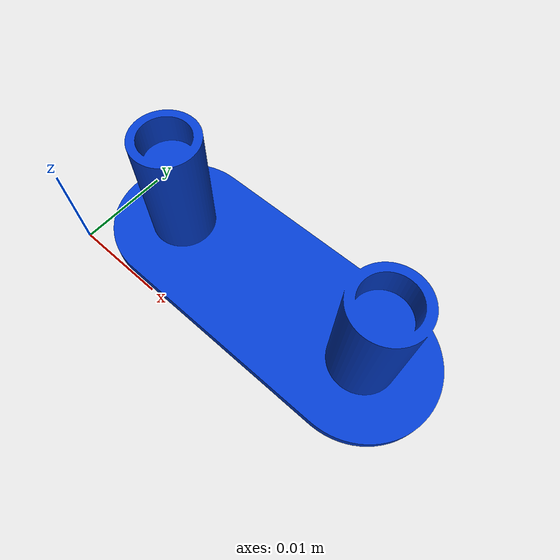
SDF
<?xml version="1.0" ?>
<sdf version="1.5">
  <model name="bottom_casing">
    <static>false</static>
    <link name="link">
      <collision name="collision">
        <geometry>
          <mesh>
            <scale>1 1 1</scale>
            <uri>model://bottom_casing/meshes/bottom_casing.stl</uri>
          </mesh>
        </geometry>
      </collision>
      <visual name="visual">
        <geometry>
          <mesh>
            <scale>1 1 1</scale>
            <uri>model://bottom_casing/meshes/bottom_casing.dae</uri>
          </mesh>
        </geometry>
      </visual>
    </link>
  </model>
</sdf>
